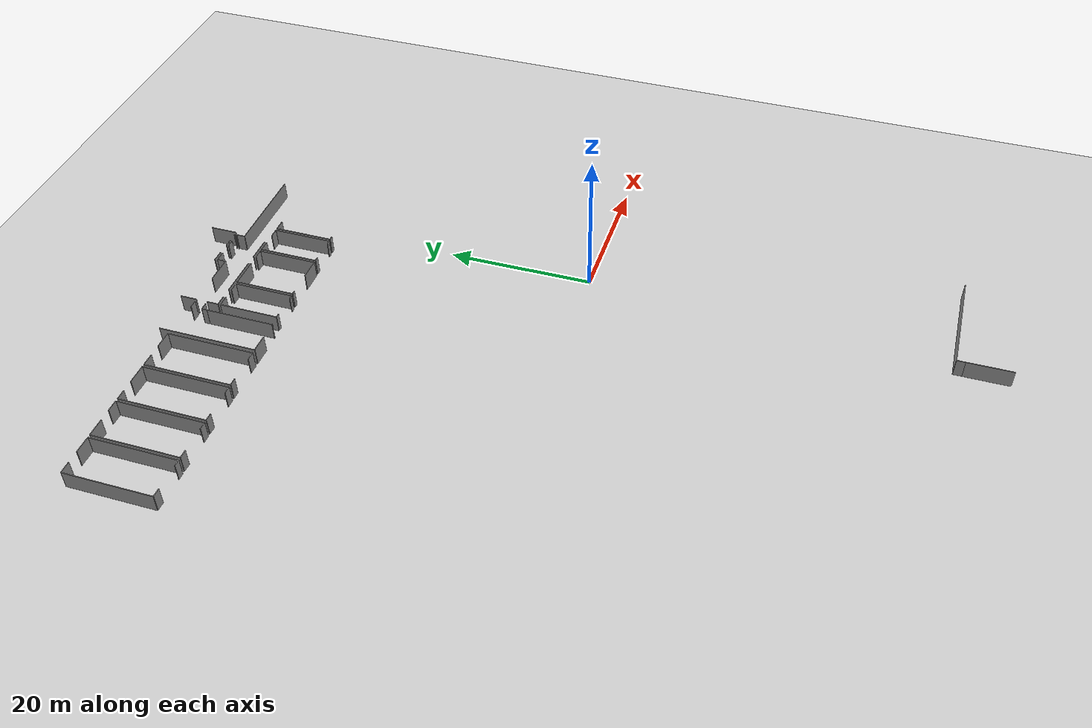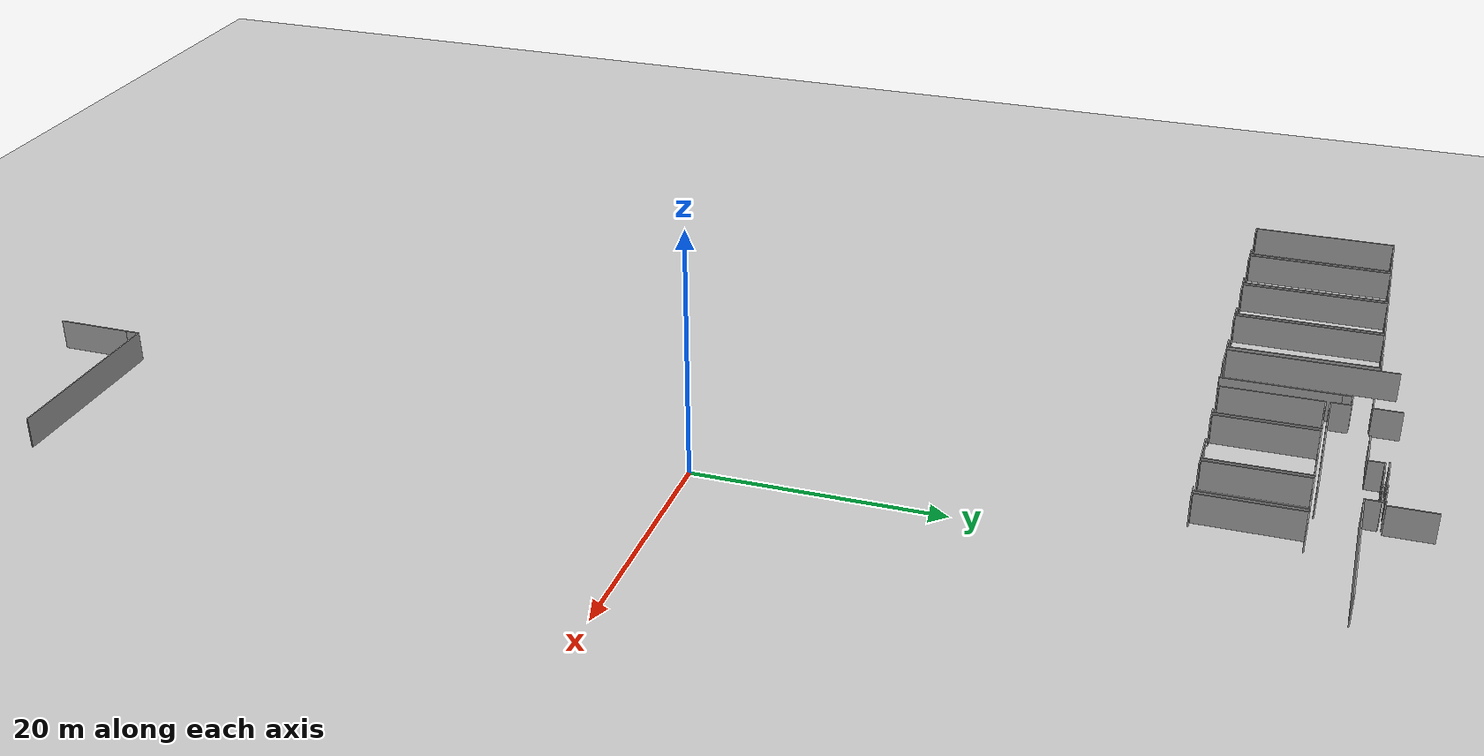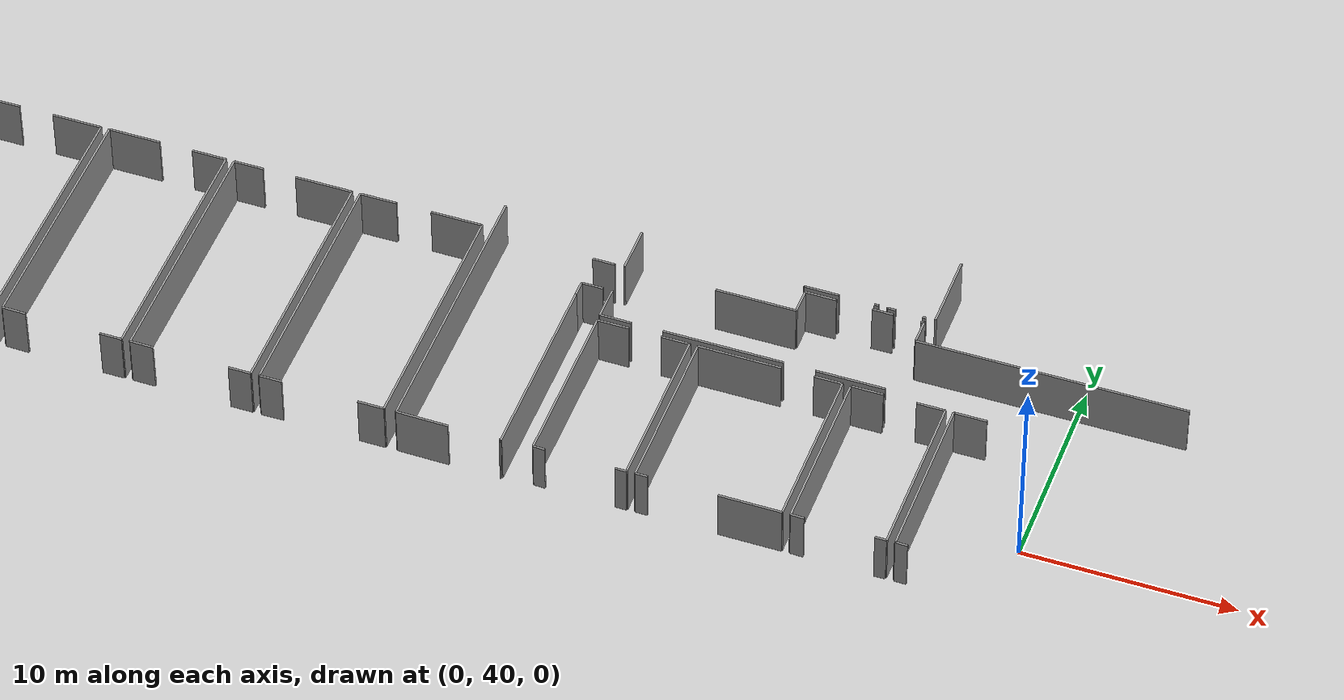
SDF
<sdf version="1.6">
 <world name="default">
  <model name="ground_plane">
   <static>1</static>
   <link name="link">
    <collision name="collision">
     <geometry><plane><normal>0 0 1</normal><size>100 100</size></plane></geometry>
     <surface><friction><ode><mu>100</mu><mu2>50</mu2></ode></friction></surface>
    </collision>
    <visual name="visual">
     <cast_shadows>0</cast_shadows>
     <geometry><plane><normal>0 0 1</normal><size>100 100</size></plane></geometry>
     <material>
      <script><uri>file://media/materials/scripts/gazebo.material</uri><name>Gazebo/Grey</name></script>
     </material>
    </visual>
   </link>
  </model>
  <model name="0510035517_A_40_1_105">
   <static>1</static>
   <link name="Wall_65">
    <collision name="Wall_65_Collision">
     <geometry><box><size>12.1143960911 0.1 2.5</size></box></geometry>
     <pose>6.05719804553 0 1.25 0 0 0</pose>
    </collision>
    <visual name="Wall_65_Visual">
     <pose>6.05719804553 0 1.25 0 0 0</pose>
     <geometry><box><size>12.1143960911 0.1 2.5</size></box></geometry>
     <material>
      <script><uri>file://media/materials/scripts/gazebo.material</uri><name>Gazebo/Grey</name></script>
      <ambient>1 1 1 1</ambient>
     </material>
    </visual>
    <pose>41.6037310256 -27.2690188902 0 0 0 1.57079632679</pose>
   </link>
   <link name="Wall_66">
    <collision name="Wall_66_Collision">
     <geometry><box><size>1.62508021832 0.1 2.5</size></box></geometry>
     <pose>0.81254010916 0 1.25 0 0 0</pose>
    </collision>
    <visual name="Wall_66_Visual">
     <pose>0.81254010916 0 1.25 0 0 0</pose>
     <geometry><box><size>1.62508021832 0.1 2.5</size></box></geometry>
     <material>
      <script><uri>file://media/materials/scripts/gazebo.material</uri><name>Gazebo/Grey</name></script>
      <ambient>1 1 1 1</ambient>
     </material>
    </visual>
    <pose>41.6037310256 -15.1546227992 0 0 0 0.0</pose>
   </link>
   <link name="Wall_67">
    <collision name="Wall_67_Collision">
     <geometry><box><size>2.40635900955 0.1 2.5</size></box></geometry>
     <pose>1.20317950477 0 1.25 0 0 0</pose>
    </collision>
    <visual name="Wall_67_Visual">
     <pose>1.20317950477 0 1.25 0 0 0</pose>
     <geometry><box><size>2.40635900955 0.1 2.5</size></box></geometry>
     <material>
      <script><uri>file://media/materials/scripts/gazebo.material</uri><name>Gazebo/Grey</name></script>
      <ambient>1 1 1 1</ambient>
     </material>
    </visual>
    <pose>44.9108226429 -15.1546227992 0 0 0 0.0</pose>
   </link>
   <link name="Wall_68">
    <collision name="Wall_68_Collision">
     <geometry><box><size>12.1316787709 0.1 2.5</size></box></geometry>
     <pose>6.06583938545 0 1.25 0 0 0</pose>
    </collision>
    <visual name="Wall_68_Visual">
     <pose>6.06583938545 0 1.25 0 0 0</pose>
     <geometry><box><size>12.1316787709 0.1 2.5</size></box></geometry>
     <material>
      <script><uri>file://media/materials/scripts/gazebo.material</uri><name>Gazebo/Grey</name></script>
      <ambient>1 1 1 1</ambient>
     </material>
    </visual>
    <pose>47.3171816524 -15.1546227992 0 0 0 -1.57079632679</pose>
   </link>
   <link name="Wall_69">
    <collision name="Wall_69_Collision">
     <geometry><box><size>0.900986764771 0.1 2.5</size></box></geometry>
     <pose>0.450493382386 0 1.25 0 0 0</pose>
    </collision>
    <visual name="Wall_69_Visual">
     <pose>0.450493382386 0 1.25 0 0 0</pose>
     <geometry><box><size>0.900986764771 0.1 2.5</size></box></geometry>
     <material>
      <script><uri>file://media/materials/scripts/gazebo.material</uri><name>Gazebo/Grey</name></script>
      <ambient>1 1 1 1</ambient>
     </material>
    </visual>
    <pose>47.3171816524 -27.2863015701 0 0 0 3.14159265359</pose>
   </link>
   <link name="Wall_70">
    <collision name="Wall_70_Collision">
     <geometry><box><size>1.17636581864 0.1 2.5</size></box></geometry>
     <pose>0.588182909322 0 1.25 0 0 0</pose>
    </collision>
    <visual name="Wall_70_Visual">
     <pose>0.588182909322 0 1.25 0 0 0</pose>
     <geometry><box><size>1.17636581864 0.1 2.5</size></box></geometry>
     <material>
      <script><uri>file://media/materials/scripts/gazebo.material</uri><name>Gazebo/Grey</name></script>
      <ambient>1 1 1 1</ambient>
     </material>
    </visual>
    <pose>42.7799698824 -27.2863015701 0 0 0 3.12690053882</pose>
   </link>
   <link name="Wall_71">
    <collision name="Wall_71_Collision">
     <geometry><box><size>12.1301538286 0.1 2.5</size></box></geometry>
     <pose>6.06507691428 0 1.25 0 0 0</pose>
    </collision>
    <visual name="Wall_71_Visual">
     <pose>6.06507691428 0 1.25 0 0 0</pose>
     <geometry><box><size>12.1301538286 0.1 2.5</size></box></geometry>
     <material>
      <script><uri>file://media/materials/scripts/gazebo.material</uri><name>Gazebo/Grey</name></script>
      <ambient>1 1 1 1</ambient>
     </material>
    </visual>
    <pose>47.7365407954 -27.2758811307 0 0 0 1.57079632679</pose>
   </link>
   <link name="Wall_72">
    <collision name="Wall_72_Collision">
     <geometry><box><size>2.52860855366 0.1 2.5</size></box></geometry>
     <pose>1.26430427683 0 1.25 0 0 0</pose>
    </collision>
    <visual name="Wall_72_Visual">
     <pose>1.26430427683 0 1.25 0 0 0</pose>
     <geometry><box><size>2.52860855366 0.1 2.5</size></box></geometry>
     <material>
      <script><uri>file://media/materials/scripts/gazebo.material</uri><name>Gazebo/Grey</name></script>
      <ambient>1 1 1 1</ambient>
     </material>
    </visual>
    <pose>47.7365407954 -15.1457273022 0 0 0 0.0</pose>
   </link>
   <link name="Wall_73">
    <collision name="Wall_73_Collision">
     <geometry><box><size>1.66879523201 0.1 2.5</size></box></geometry>
     <pose>0.834397616007 0 1.25 0 0 0</pose>
    </collision>
    <visual name="Wall_73_Visual">
     <pose>0.834397616007 0 1.25 0 0 0</pose>
     <geometry><box><size>1.66879523201 0.1 2.5</size></box></geometry>
     <material>
      <script><uri>file://media/materials/scripts/gazebo.material</uri><name>Gazebo/Grey</name></script>
      <ambient>1 1 1 1</ambient>
     </material>
    </visual>
    <pose>51.8836214839 -15.1457273022 0 0 0 0.0</pose>
   </link>
   <link name="Wall_74">
    <collision name="Wall_74_Collision">
     <geometry><box><size>12.1520113354 0.1 2.5</size></box></geometry>
     <pose>6.0760056677 0 1.25 0 0 0</pose>
    </collision>
    <visual name="Wall_74_Visual">
     <pose>6.0760056677 0 1.25 0 0 0</pose>
     <geometry><box><size>12.1520113354 0.1 2.5</size></box></geometry>
     <material>
      <script><uri>file://media/materials/scripts/gazebo.material</uri><name>Gazebo/Grey</name></script>
      <ambient>1 1 1 1</ambient>
     </material>
    </visual>
    <pose>53.5524167159 -15.1457273022 0 0 0 -1.57079632679</pose>
   </link>
   <link name="Wall_75">
    <collision name="Wall_75_Collision">
     <geometry><box><size>1.06186818144 0.1 2.5</size></box></geometry>
     <pose>0.530934090721 0 1.25 0 0 0</pose>
    </collision>
    <visual name="Wall_75_Visual">
     <pose>0.530934090721 0 1.25 0 0 0</pose>
     <geometry><box><size>1.06186818144 0.1 2.5</size></box></geometry>
     <material>
      <script><uri>file://media/materials/scripts/gazebo.material</uri><name>Gazebo/Grey</name></script>
      <ambient>1 1 1 1</ambient>
     </material>
    </visual>
    <pose>53.5524167159 -27.2977386376 0 0 0 3.14159265359</pose>
   </link>
   <link name="Wall_76">
    <collision name="Wall_76_Collision">
     <geometry><box><size>1.14213682106 0.1 2.5</size></box></geometry>
     <pose>0.571068410529 0 1.25 0 0 0</pose>
    </collision>
    <visual name="Wall_76_Visual">
     <pose>0.571068410529 0 1.25 0 0 0</pose>
     <geometry><box><size>1.14213682106 0.1 2.5</size></box></geometry>
     <material>
      <script><uri>file://media/materials/scripts/gazebo.material</uri><name>Gazebo/Grey</name></script>
      <ambient>1 1 1 1</ambient>
     </material>
    </visual>
    <pose>48.8784684496 -27.2977386376 0 0 0 3.12245410482</pose>
   </link>
   <link name="Wall_77">
    <collision name="Wall_77_Collision">
     <geometry><box><size>12.1344744985 0.1 2.5</size></box></geometry>
     <pose>6.06723724926 0 1.25 0 0 0</pose>
    </collision>
    <visual name="Wall_77_Visual">
     <pose>6.06723724926 0 1.25 0 0 0</pose>
     <geometry><box><size>12.1344744985 0.1 2.5</size></box></geometry>
     <material>
      <script><uri>file://media/materials/scripts/gazebo.material</uri><name>Gazebo/Grey</name></script>
      <ambient>1 1 1 1</ambient>
     </material>
    </visual>
    <pose>53.9623720478 -27.2822350572 0 0 0 1.57079632679</pose>
   </link>
   <link name="Wall_78">
    <collision name="Wall_78_Collision">
     <geometry><box><size>1.43344579783 0.1 2.5</size></box></geometry>
     <pose>0.716722898915 0 1.25 0 0 0</pose>
    </collision>
    <visual name="Wall_78_Visual">
     <pose>0.716722898915 0 1.25 0 0 0</pose>
     <geometry><box><size>1.43344579783 0.1 2.5</size></box></geometry>
     <material>
      <script><uri>file://media/materials/scripts/gazebo.material</uri><name>Gazebo/Grey</name></script>
      <ambient>1 1 1 1</ambient>
     </material>
    </visual>
    <pose>53.9623720478 -15.1477605586 0 0 0 0.0</pose>
   </link>
   <link name="Wall_79">
    <collision name="Wall_79_Collision">
     <geometry><box><size>2.78327392412 0.1 2.5</size></box></geometry>
     <pose>1.39163696206 0 1.25 0 0 0</pose>
    </collision>
    <visual name="Wall_79_Visual">
     <pose>1.39163696206 0 1.25 0 0 0</pose>
     <geometry><box><size>2.78327392412 0.1 2.5</size></box></geometry>
     <material>
      <script><uri>file://media/materials/scripts/gazebo.material</uri><name>Gazebo/Grey</name></script>
      <ambient>1 1 1 1</ambient>
     </material>
    </visual>
    <pose>57.0038695412 -15.1477605586 0 0 0 0.0</pose>
   </link>
   <link name="Wall_80">
    <collision name="Wall_80_Collision">
     <geometry><box><size>12.1438783096 0.1 2.5</size></box></geometry>
     <pose>6.0719391548 0 1.25 0 0 0</pose>
    </collision>
    <visual name="Wall_80_Visual">
     <pose>6.0719391548 0 1.25 0 0 0</pose>
     <geometry><box><size>12.1438783096 0.1 2.5</size></box></geometry>
     <material>
      <script><uri>file://media/materials/scripts/gazebo.material</uri><name>Gazebo/Grey</name></script>
      <ambient>1 1 1 1</ambient>
     </material>
    </visual>
    <pose>59.7871434653 -15.1477605586 0 0 0 -1.57079632679</pose>
   </link>
   <link name="Wall_81">
    <collision name="Wall_81_Collision">
     <geometry><box><size>1.0743218772 0.1 2.5</size></box></geometry>
     <pose>0.537160938602 0 1.25 0 0 0</pose>
    </collision>
    <visual name="Wall_81_Visual">
     <pose>0.537160938602 0 1.25 0 0 0</pose>
     <geometry><box><size>1.0743218772 0.1 2.5</size></box></geometry>
     <material>
      <script><uri>file://media/materials/scripts/gazebo.material</uri><name>Gazebo/Grey</name></script>
      <ambient>1 1 1 1</ambient>
     </material>
    </visual>
    <pose>59.7871434653 -27.2916388682 0 0 0 3.14159265359</pose>
   </link>
   <link name="Wall_82">
    <collision name="Wall_82_Collision">
     <geometry><box><size>1.10460659621 0.1 2.5</size></box></geometry>
     <pose>0.552303298107 0 1.25 0 0 0</pose>
    </collision>
    <visual name="Wall_82_Visual">
     <pose>0.552303298107 0 1.25 0 0 0</pose>
     <geometry><box><size>1.10460659621 0.1 2.5</size></box></geometry>
     <material>
      <script><uri>file://media/materials/scripts/gazebo.material</uri><name>Gazebo/Grey</name></script>
      <ambient>1 1 1 1</ambient>
     </material>
    </visual>
    <pose>55.0669386147 -27.2916388682 0 0 0 3.13307928357</pose>
   </link>
   <link name="Wall_83">
    <collision name="Wall_83_Collision">
     <geometry><box><size>12.149978079 0.1 2.5</size></box></geometry>
     <pose>6.07498903948 0 1.25 0 0 0</pose>
    </collision>
    <visual name="Wall_83_Visual">
     <pose>6.07498903948 0 1.25 0 0 0</pose>
     <geometry><box><size>12.149978079 0.1 2.5</size></box></geometry>
     <material>
      <script><uri>file://media/materials/scripts/gazebo.material</uri><name>Gazebo/Grey</name></script>
      <ambient>1 1 1 1</ambient>
     </material>
    </visual>
    <pose>60.1920156561 -27.2977386376 0 0 0 1.57079632679</pose>
   </link>
   <link name="Wall_84">
    <collision name="Wall_84_Collision">
     <geometry><box><size>1.78774073439 0.1 2.5</size></box></geometry>
     <pose>0.893870367193 0 1.25 0 0 0</pose>
    </collision>
    <visual name="Wall_84_Visual">
     <pose>0.893870367193 0 1.25 0 0 0</pose>
     <geometry><box><size>1.78774073439 0.1 2.5</size></box></geometry>
     <material>
      <script><uri>file://media/materials/scripts/gazebo.material</uri><name>Gazebo/Grey</name></script>
      <ambient>1 1 1 1</ambient>
     </material>
    </visual>
    <pose>60.1920156561 -15.1477605586 0 0 0 0.0</pose>
   </link>
   <link name="Wall_85">
    <collision name="Wall_85_Collision">
     <geometry><box><size>2.48413106879 0.1 2.5</size></box></geometry>
     <pose>1.2420655344 0 1.25 0 0 0</pose>
    </collision>
    <visual name="Wall_85_Visual">
     <pose>1.2420655344 0 1.25 0 0 0</pose>
     <geometry><box><size>2.48413106879 0.1 2.5</size></box></geometry>
     <material>
      <script><uri>file://media/materials/scripts/gazebo.material</uri><name>Gazebo/Grey</name></script>
      <ambient>1 1 1 1</ambient>
     </material>
    </visual>
    <pose>63.6676134017 -15.1477605586 0 0 0 0.0</pose>
   </link>
   <link name="Wall_86">
    <collision name="Wall_86_Collision">
     <geometry><box><size>12.1354911267 0.1 2.5</size></box></geometry>
     <pose>6.06774556337 0 1.25 0 0 0</pose>
    </collision>
    <visual name="Wall_86_Visual">
     <pose>6.06774556337 0 1.25 0 0 0</pose>
     <geometry><box><size>12.1354911267 0.1 2.5</size></box></geometry>
     <material>
      <script><uri>file://media/materials/scripts/gazebo.material</uri><name>Gazebo/Grey</name></script>
      <ambient>1 1 1 1</ambient>
     </material>
    </visual>
    <pose>66.1517444705 -15.1477605586 0 0 0 -1.57079632679</pose>
   </link>
   <link name="Wall_87">
    <collision name="Wall_87_Collision">
     <geometry><box><size>1.24918193197 0.1 2.5</size></box></geometry>
     <pose>0.624590965987 0 1.25 0 0 0</pose>
    </collision>
    <visual name="Wall_87_Visual">
     <pose>0.624590965987 0 1.25 0 0 0</pose>
     <geometry><box><size>1.24918193197 0.1 2.5</size></box></geometry>
     <material>
      <script><uri>file://media/materials/scripts/gazebo.material</uri><name>Gazebo/Grey</name></script>
      <ambient>1 1 1 1</ambient>
     </material>
    </visual>
    <pose>66.1517444705 -27.2832516854 0 0 0 3.14159265359</pose>
   </link>
   <link name="Wall_88">
    <collision name="Wall_88_Collision">
     <geometry><box><size>1.07162407636 0.1 2.5</size></box></geometry>
     <pose>0.535812038178 0 1.25 0 0 0</pose>
    </collision>
    <visual name="Wall_88_Visual">
     <pose>0.535812038178 0 1.25 0 0 0</pose>
     <geometry><box><size>1.07162407636 0.1 2.5</size></box></geometry>
     <material>
      <script><uri>file://media/materials/scripts/gazebo.material</uri><name>Gazebo/Grey</name></script>
      <ambient>1 1 1 1</ambient>
     </material>
    </visual>
    <pose>61.2635418057 -27.2832516854 0 0 0 -3.12807355316</pose>
   </link>
   <link name="Wall_89">
    <collision name="Wall_89_Collision">
     <geometry><box><size>13.6660249201 0.1 2.5</size></box></geometry>
     <pose>6.83301246005 0 1.25 0 0 0</pose>
    </collision>
    <visual name="Wall_89_Visual">
     <pose>6.83301246005 0 1.25 0 0 0</pose>
     <geometry><box><size>13.6660249201 0.1 2.5</size></box></geometry>
     <material>
      <script><uri>file://media/materials/scripts/gazebo.material</uri><name>Gazebo/Grey</name></script>
      <ambient>1 1 1 1</ambient>
     </material>
    </visual>
    <pose>66.7218187479 -27.2753728166 0 0 0 1.57079632679</pose>
   </link>
   <link name="Wall_93">
    <collision name="Wall_93_Collision">
     <geometry><box><size>1.06923873608 0.1 2.5</size></box></geometry>
     <pose>0.534619368038 0 1.25 0 0 0</pose>
    </collision>
    <visual name="Wall_93_Visual">
     <pose>0.534619368038 0 1.25 0 0 0</pose>
     <geometry><box><size>1.06923873608 0.1 2.5</size></box></geometry>
     <material>
      <script><uri>file://media/materials/scripts/gazebo.material</uri><name>Gazebo/Grey</name></script>
      <ambient>1 1 1 1</ambient>
     </material>
    </visual>
    <pose>71.6359454325 -15.456307225 0 0 0 0.0</pose>
   </link>
   <link name="Wall_94">
    <collision name="Wall_94_Collision">
     <geometry><box><size>1.01713653952 0.1 2.5</size></box></geometry>
     <pose>0.508568269762 0 1.25 0 0 0</pose>
    </collision>
    <visual name="Wall_94_Visual">
     <pose>0.508568269762 0 1.25 0 0 0</pose>
     <geometry><box><size>1.01713653952 0.1 2.5</size></box></geometry>
     <material>
      <script><uri>file://media/materials/scripts/gazebo.material</uri><name>Gazebo/Grey</name></script>
      <ambient>1 1 1 1</ambient>
     </material>
    </visual>
    <pose>72.7051841686 -17.0478387119 0 0 0 3.14159265359</pose>
   </link>
   <link name="Wall_95">
    <collision name="Wall_95_Collision">
     <geometry><box><size>0.759421284383 0.1 2.5</size></box></geometry>
     <pose>0.379710642191 0 1.25 0 0 0</pose>
    </collision>
    <visual name="Wall_95_Visual">
     <pose>0.379710642191 0 1.25 0 0 0</pose>
     <geometry><box><size>0.759421284383 0.1 2.5</size></box></geometry>
     <material>
      <script><uri>file://media/materials/scripts/gazebo.material</uri><name>Gazebo/Grey</name></script>
      <ambient>1 1 1 1</ambient>
     </material>
    </visual>
    <pose>71.688047629 -17.0478387119 0 0 0 -1.57079632679</pose>
   </link>
   <link name="Wall_96">
    <collision name="Wall_96_Collision">
     <geometry><box><size>9.49429099712 0.1 2.5</size></box></geometry>
     <pose>4.74714549856 0 1.25 0 0 0</pose>
    </collision>
    <visual name="Wall_96_Visual">
     <pose>4.74714549856 0 1.25 0 0 0</pose>
     <geometry><box><size>9.49429099712 0.1 2.5</size></box></geometry>
     <material>
      <script><uri>file://media/materials/scripts/gazebo.material</uri><name>Gazebo/Grey</name></script>
      <ambient>1 1 1 1</ambient>
     </material>
    </visual>
    <pose>71.688047629 -17.8072599963 0 0 0 -1.57079632679</pose>
   </link>
   <link name="Wall_97">
    <collision name="Wall_97_Collision">
     <geometry><box><size>0.0706556616661 0.1 2.5</size></box></geometry>
     <pose>0.0353278308331 0 1.25 0 0 0</pose>
    </collision>
    <visual name="Wall_97_Visual">
     <pose>0.0353278308331 0 1.25 0 0 0</pose>
     <geometry><box><size>0.0706556616661 0.1 2.5</size></box></geometry>
     <material>
      <script><uri>file://media/materials/scripts/gazebo.material</uri><name>Gazebo/Grey</name></script>
      <ambient>1 1 1 1</ambient>
     </material>
    </visual>
    <pose>71.688047629 -27.3015509934 0 0 0 3.14159265359</pose>
   </link>
   <link name="Wall_98">
    <collision name="Wall_98_Collision">
     <geometry><box><size>2.47435742725 0.1 2.5</size></box></geometry>
     <pose>1.23717871363 0 1.25 0 0 0</pose>
    </collision>
    <visual name="Wall_98_Visual">
     <pose>1.23717871363 0 1.25 0 0 0</pose>
     <geometry><box><size>2.47435742725 0.1 2.5</size></box></geometry>
     <material>
      <script><uri>file://media/materials/scripts/gazebo.material</uri><name>Gazebo/Grey</name></script>
      <ambient>1 1 1 1</ambient>
     </material>
    </visual>
    <pose>69.1960376915 -27.3015509934 0 0 0 3.1310126683</pose>
   </link>
   <link name="Wall_172">
    <collision name="Wall_172_Collision">
     <geometry><box><size>0.208154629153 0.1 2.5</size></box></geometry>
     <pose>0.104077314577 0 1.25 0 0 0</pose>
    </collision>
    <visual name="Wall_172_Visual">
     <pose>0.104077314577 0 1.25 0 0 0</pose>
     <geometry><box><size>0.208154629153 0.1 2.5</size></box></geometry>
     <material>
      <script><uri>file://media/materials/scripts/gazebo.material</uri><name>Gazebo/Grey</name></script>
      <ambient>1 1 1 1</ambient>
     </material>
    </visual>
    <pose>84.7415540433 -13.8663006805 0 0 0 3.14159265359</pose>
   </link>
   <link name="Wall_173">
    <collision name="Wall_173_Collision">
     <geometry><box><size>1.65227502335 0.1 2.5</size></box></geometry>
     <pose>0.826137511675 0 1.25 0 0 0</pose>
    </collision>
    <visual name="Wall_173_Visual">
     <pose>0.826137511675 0 1.25 0 0 0</pose>
     <geometry><box><size>1.65227502335 0.1 2.5</size></box></geometry>
     <material>
      <script><uri>file://media/materials/scripts/gazebo.material</uri><name>Gazebo/Grey</name></script>
      <ambient>1 1 1 1</ambient>
     </material>
    </visual>
    <pose>82.8747704644 -13.8663006805 0 0 0 3.14159265359</pose>
   </link>
   <link name="Wall_174">
    <collision name="Wall_174_Collision">
     <geometry><box><size>0.0368527731712 0.1 2.5</size></box></geometry>
     <pose>0.0184263865856 0 1.25 0 0 0</pose>
    </collision>
    <visual name="Wall_174_Visual">
     <pose>0.0184263865856 0 1.25 0 0 0</pose>
     <geometry><box><size>0.0368527731712 0.1 2.5</size></box></geometry>
     <material>
      <script><uri>file://media/materials/scripts/gazebo.material</uri><name>Gazebo/Grey</name></script>
      <ambient>1 1 1 1</ambient>
     </material>
    </visual>
    <pose>81.2224954411 -13.8663006805 0 0 0 1.57079632679</pose>
   </link>
   <link name="Wall_178">
    <collision name="Wall_178_Collision">
     <geometry><box><size>0.161389730784 0.1 2.5</size></box></geometry>
     <pose>0.0806948653921 0 1.25 0 0 0</pose>
    </collision>
    <visual name="Wall_178_Visual">
     <pose>0.0806948653921 0 1.25 0 0 0</pose>
     <geometry><box><size>0.161389730784 0.1 2.5</size></box></geometry>
     <material>
      <script><uri>file://media/materials/scripts/gazebo.material</uri><name>Gazebo/Grey</name></script>
      <ambient>1 1 1 1</ambient>
     </material>
    </visual>
    <pose>86.9895732068 -13.886379088 0 0 0 3.14159265359</pose>
   </link>
   <link name="Wall_179">
    <collision name="Wall_179_Collision">
     <geometry><box><size>0.381998055699 0.1 2.5</size></box></geometry>
     <pose>0.190999027849 0 1.25 0 0 0</pose>
    </collision>
    <visual name="Wall_179_Visual">
     <pose>0.190999027849 0 1.25 0 0 0</pose>
     <geometry><box><size>0.381998055699 0.1 2.5</size></box></geometry>
     <material>
      <script><uri>file://media/materials/scripts/gazebo.material</uri><name>Gazebo/Grey</name></script>
      <ambient>1 1 1 1</ambient>
     </material>
    </visual>
    <pose>85.551806739 -13.886379088 0 0 0 3.14159265359</pose>
   </link>
   <link name="Wall_180">
    <collision name="Wall_180_Collision">
     <geometry><box><size>0.0521028164439 0.1 2.5</size></box></geometry>
     <pose>0.026051408222 0 1.25 0 0 0</pose>
    </collision>
    <visual name="Wall_180_Visual">
     <pose>0.026051408222 0 1.25 0 0 0</pose>
     <geometry><box><size>0.0521028164439 0.1 2.5</size></box></geometry>
     <material>
      <script><uri>file://media/materials/scripts/gazebo.material</uri><name>Gazebo/Grey</name></script>
      <ambient>1 1 1 1</ambient>
     </material>
    </visual>
    <pose>85.1698086833 -13.886379088 0 0 0 1.56591831671</pose>
   </link>
   <link name="Wall_186">
    <collision name="Wall_186_Collision">
     <geometry><box><size>3.70738898102 0.1 2.5</size></box></geometry>
     <pose>1.85369449051 0 1.25 0 0 0</pose>
    </collision>
    <visual name="Wall_186_Visual">
     <pose>1.85369449051 0 1.25 0 0 0</pose>
     <geometry><box><size>3.70738898102 0.1 2.5</size></box></geometry>
     <material>
      <script><uri>file://media/materials/scripts/gazebo.material</uri><name>Gazebo/Grey</name></script>
      <ambient>1 1 1 1</ambient>
     </material>
    </visual>
    <pose>87.4213860455 -13.8419016031 0 0 0 1.57079632679</pose>
   </link>
   <link name="Wall_258">
    <collision name="Wall_258_Collision">
     <geometry><box><size>8.16937026235 0.1 2.5</size></box></geometry>
     <pose>4.08468513118 0 1.25 0 0 0</pose>
    </collision>
    <visual name="Wall_258_Visual">
     <pose>4.08468513118 0 1.25 0 0 0</pose>
     <geometry><box><size>8.16937026235 0.1 2.5</size></box></geometry>
     <material>
      <script><uri>file://media/materials/scripts/gazebo.material</uri><name>Gazebo/Grey</name></script>
      <ambient>1 1 1 1</ambient>
     </material>
    </visual>
    <pose>89.9507570703 -27.1676102247 0 0 0 1.57079632679</pose>
   </link>
   <link name="Wall_259">
    <collision name="Wall_259_Collision">
     <geometry><box><size>1.55213714315 0.1 2.5</size></box></geometry>
     <pose>0.776068571574 0 1.25 0 0 0</pose>
    </collision>
    <visual name="Wall_259_Visual">
     <pose>0.776068571574 0 1.25 0 0 0</pose>
     <geometry><box><size>1.55213714315 0.1 2.5</size></box></geometry>
     <material>
      <script><uri>file://media/materials/scripts/gazebo.material</uri><name>Gazebo/Grey</name></script>
      <ambient>1 1 1 1</ambient>
     </material>
    </visual>
    <pose>89.9507570703 -18.9982399624 0 0 0 0.0</pose>
   </link>
   <link name="Wall_263">
    <collision name="Wall_263_Collision">
     <geometry><box><size>0.570004246767 0.1 2.5</size></box></geometry>
     <pose>0.285002123384 0 1.25 0 0 0</pose>
    </collision>
    <visual name="Wall_263_Visual">
     <pose>0.285002123384 0 1.25 0 0 0</pose>
     <geometry><box><size>0.570004246767 0.1 2.5</size></box></geometry>
     <material>
      <script><uri>file://media/materials/scripts/gazebo.material</uri><name>Gazebo/Grey</name></script>
      <ambient>1 1 1 1</ambient>
     </material>
    </visual>
    <pose>90.5205771907 -27.182097177 0 0 0 3.11617440033</pose>
   </link>
   <link name="Wall_264">
    <collision name="Wall_264_Collision">
     <geometry><box><size>8.16225386478 0.1 2.5</size></box></geometry>
     <pose>4.08112693239 0 1.25 0 0 0</pose>
    </collision>
    <visual name="Wall_264_Visual">
     <pose>4.08112693239 0 1.25 0 0 0</pose>
     <geometry><box><size>8.16225386478 0.1 2.5</size></box></geometry>
     <material>
      <script><uri>file://media/materials/scripts/gazebo.material</uri><name>Gazebo/Grey</name></script>
      <ambient>1 1 1 1</ambient>
     </material>
    </visual>
    <pose>85.146172077 -27.1676102247 0 0 0 1.57079632679</pose>
   </link>
   <link name="Wall_265">
    <collision name="Wall_265_Collision">
     <geometry><box><size>1.53587109154 0.1 2.5</size></box></geometry>
     <pose>0.767935545771 0 1.25 0 0 0</pose>
    </collision>
    <visual name="Wall_265_Visual">
     <pose>0.767935545771 0 1.25 0 0 0</pose>
     <geometry><box><size>1.53587109154 0.1 2.5</size></box></geometry>
     <material>
      <script><uri>file://media/materials/scripts/gazebo.material</uri><name>Gazebo/Grey</name></script>
      <ambient>1 1 1 1</ambient>
     </material>
    </visual>
    <pose>85.146172077 -19.00535636 0 0 0 0.0</pose>
   </link>
   <link name="Wall_266">
    <collision name="Wall_266_Collision">
     <geometry><box><size>1.33762858759 0.1 2.5</size></box></geometry>
     <pose>0.668814293793 0 1.25 0 0 0</pose>
    </collision>
    <visual name="Wall_266_Visual">
     <pose>0.668814293793 0 1.25 0 0 0</pose>
     <geometry><box><size>1.33762858759 0.1 2.5</size></box></geometry>
     <material>
      <script><uri>file://media/materials/scripts/gazebo.material</uri><name>Gazebo/Grey</name></script>
      <ambient>1 1 1 1</ambient>
     </material>
    </visual>
    <pose>88.2255389718 -19.00535636 0 0 0 0.0</pose>
   </link>
   <link name="Wall_267">
    <collision name="Wall_267_Collision">
     <geometry><box><size>8.18385721457 0.1 2.5</size></box></geometry>
     <pose>4.09192860728 0 1.25 0 0 0</pose>
    </collision>
    <visual name="Wall_267_Visual">
     <pose>4.09192860728 0 1.25 0 0 0</pose>
     <geometry><box><size>8.18385721457 0.1 2.5</size></box></geometry>
     <material>
      <script><uri>file://media/materials/scripts/gazebo.material</uri><name>Gazebo/Grey</name></script>
      <ambient>1 1 1 1</ambient>
     </material>
    </visual>
    <pose>89.5631675594 -19.00535636 0 0 0 -1.57079632679</pose>
   </link>
   <link name="Wall_268">
    <collision name="Wall_268_Collision">
     <geometry><box><size>0.544404414708 0.1 2.5</size></box></geometry>
     <pose>0.272202207354 0 1.25 0 0 0</pose>
    </collision>
    <visual name="Wall_268_Visual">
     <pose>0.272202207354 0 1.25 0 0 0</pose>
     <geometry><box><size>0.544404414708 0.1 2.5</size></box></geometry>
     <material>
      <script><uri>file://media/materials/scripts/gazebo.material</uri><name>Gazebo/Grey</name></script>
      <ambient>1 1 1 1</ambient>
     </material>
    </visual>
    <pose>89.5631675594 -27.1892135745 0 0 0 3.14159265359</pose>
   </link>
   <link name="Wall_269">
    <collision name="Wall_269_Collision">
     <geometry><box><size>0.6289015574 0.1 2.5</size></box></geometry>
     <pose>0.3144507787 0 1.25 0 0 0</pose>
    </collision>
    <visual name="Wall_269_Visual">
     <pose>0.3144507787 0 1.25 0 0 0</pose>
     <geometry><box><size>0.6289015574 0.1 2.5</size></box></geometry>
     <material>
      <script><uri>file://media/materials/scripts/gazebo.material</uri><name>Gazebo/Grey</name></script>
      <ambient>1 1 1 1</ambient>
     </material>
    </visual>
    <pose>85.7747024774 -27.1892135745 0 0 0 3.1072349701</pose>
   </link>
   <link name="Wall_270">
    <collision name="Wall_270_Collision">
     <geometry><box><size>8.17216598997 0.1 2.5</size></box></geometry>
     <pose>4.08608299499 0 1.25 0 0 0</pose>
    </collision>
    <visual name="Wall_270_Visual">
     <pose>4.08608299499 0 1.25 0 0 0</pose>
     <geometry><box><size>8.17216598997 0.1 2.5</size></box></geometry>
     <material>
      <script><uri>file://media/materials/scripts/gazebo.material</uri><name>Gazebo/Grey</name></script>
      <ambient>1 1 1 1</ambient>
     </material>
    </visual>
    <pose>77.9400570583 -27.168626853 0 0 0 1.57079632679</pose>
   </link>
   <link name="Wall_271">
    <collision name="Wall_271_Collision">
     <geometry><box><size>3.94070515875 0.1 2.5</size></box></geometry>
     <pose>1.97035257938 0 1.25 0 0 0</pose>
    </collision>
    <visual name="Wall_271_Visual">
     <pose>1.97035257938 0 1.25 0 0 0</pose>
     <geometry><box><size>3.94070515875 0.1 2.5</size></box></geometry>
     <material>
      <script><uri>file://media/materials/scripts/gazebo.material</uri><name>Gazebo/Grey</name></script>
      <ambient>1 1 1 1</ambient>
     </material>
    </visual>
    <pose>77.9400570583 -18.996460863 0 0 0 0.0</pose>
   </link>
   <link name="Wall_272">
    <collision name="Wall_272_Collision">
     <geometry><box><size>1.33762858759 0.1 2.5</size></box></geometry>
     <pose>0.668814293793 0 1.25 0 0 0</pose>
    </collision>
    <visual name="Wall_272_Visual">
     <pose>0.668814293793 0 1.25 0 0 0</pose>
     <geometry><box><size>1.33762858759 0.1 2.5</size></box></geometry>
     <material>
      <script><uri>file://media/materials/scripts/gazebo.material</uri><name>Gazebo/Grey</name></script>
      <ambient>1 1 1 1</ambient>
     </material>
    </visual>
    <pose>83.4196831932 -18.996460863 0 0 0 0.0</pose>
   </link>
   <link name="Wall_273">
    <collision name="Wall_273_Collision">
     <geometry><box><size>8.18207811517 0.1 2.5</size></box></geometry>
     <pose>4.09103905759 0 1.25 0 0 0</pose>
    </collision>
    <visual name="Wall_273_Visual">
     <pose>4.09103905759 0 1.25 0 0 0</pose>
     <geometry><box><size>8.18207811517 0.1 2.5</size></box></geometry>
     <material>
      <script><uri>file://media/materials/scripts/gazebo.material</uri><name>Gazebo/Grey</name></script>
      <ambient>1 1 1 1</ambient>
     </material>
    </visual>
    <pose>84.7573117808 -18.996460863 0 0 0 -1.57079632679</pose>
   </link>
   <link name="Wall_274">
    <collision name="Wall_274_Collision">
     <geometry><box><size>2.96931688937 0.1 2.5</size></box></geometry>
     <pose>1.48465844469 0 1.25 0 0 0</pose>
    </collision>
    <visual name="Wall_274_Visual">
     <pose>1.48465844469 0 1.25 0 0 0</pose>
     <geometry><box><size>2.96931688937 0.1 2.5</size></box></geometry>
     <material>
      <script><uri>file://media/materials/scripts/gazebo.material</uri><name>Gazebo/Grey</name></script>
      <ambient>1 1 1 1</ambient>
     </material>
    </visual>
    <pose>84.7573117808 -27.1785389782 0 0 0 3.14159265359</pose>
   </link>
   <link name="Wall_275">
    <collision name="Wall_275_Collision">
     <geometry><box><size>0.58108757692 0.1 2.5</size></box></geometry>
     <pose>0.29054378846 0 1.25 0 0 0</pose>
    </collision>
    <visual name="Wall_275_Visual">
     <pose>0.29054378846 0 1.25 0 0 0</pose>
     <geometry><box><size>0.58108757692 0.1 2.5</size></box></geometry>
     <material>
      <script><uri>file://media/materials/scripts/gazebo.material</uri><name>Gazebo/Grey</name></script>
      <ambient>1 1 1 1</ambient>
     </material>
    </visual>
    <pose>78.5210600891 -27.1785389782 0 0 0 3.12453394102</pose>
   </link>
   <link name="Wall_276">
    <collision name="Wall_276_Collision">
     <geometry><box><size>8.1691161053 0.1 2.5</size></box></geometry>
     <pose>4.08455805265 0 1.25 0 0 0</pose>
    </collision>
    <visual name="Wall_276_Visual">
     <pose>4.08455805265 0 1.25 0 0 0</pose>
     <geometry><box><size>8.1691161053 0.1 2.5</size></box></geometry>
     <material>
      <script><uri>file://media/materials/scripts/gazebo.material</uri><name>Gazebo/Grey</name></script>
      <ambient>1 1 1 1</ambient>
     </material>
    </visual>
    <pose>73.1606336135 -27.1655769683 0 0 0 1.57079632679</pose>
   </link>
   <link name="Wall_277">
    <collision name="Wall_277_Collision">
     <geometry><box><size>1.50969291474 0.1 2.5</size></box></geometry>
     <pose>0.754846457368 0 1.25 0 0 0</pose>
    </collision>
    <visual name="Wall_277_Visual">
     <pose>0.754846457368 0 1.25 0 0 0</pose>
     <geometry><box><size>1.50969291474 0.1 2.5</size></box></geometry>
     <material>
      <script><uri>file://media/materials/scripts/gazebo.material</uri><name>Gazebo/Grey</name></script>
      <ambient>1 1 1 1</ambient>
     </material>
    </visual>
    <pose>73.1606336135 -18.996460863 0 0 0 0.0</pose>
   </link>
   <link name="Wall_278">
    <collision name="Wall_278_Collision">
     <geometry><box><size>1.34931981218 0.1 2.5</size></box></geometry>
     <pose>0.674659906089 0 1.25 0 0 0</pose>
    </collision>
    <visual name="Wall_278_Visual">
     <pose>0.674659906089 0 1.25 0 0 0</pose>
     <geometry><box><size>1.34931981218 0.1 2.5</size></box></geometry>
     <material>
      <script><uri>file://media/materials/scripts/gazebo.material</uri><name>Gazebo/Grey</name></script>
      <ambient>1 1 1 1</ambient>
     </material>
    </visual>
    <pose>76.1950147093 -18.996460863 0 0 0 0.0</pose>
   </link>
   <link name="Wall_279">
    <collision name="Wall_279_Collision">
     <geometry><box><size>8.1952942821 0.1 2.5</size></box></geometry>
     <pose>4.09764714105 0 1.25 0 0 0</pose>
    </collision>
    <visual name="Wall_279_Visual">
     <pose>4.09764714105 0 1.25 0 0 0</pose>
     <geometry><box><size>8.1952942821 0.1 2.5</size></box></geometry>
     <material>
      <script><uri>file://media/materials/scripts/gazebo.material</uri><name>Gazebo/Grey</name></script>
      <ambient>1 1 1 1</ambient>
     </material>
    </visual>
    <pose>77.5443345215 -18.996460863 0 0 0 -1.57079632679</pose>
   </link>
   <link name="Wall_280">
    <collision name="Wall_280_Collision">
     <geometry><box><size>0.539321273581 0.1 2.5</size></box></geometry>
     <pose>0.269660636791 0 1.25 0 0 0</pose>
    </collision>
    <visual name="Wall_280_Visual">
     <pose>0.269660636791 0 1.25 0 0 0</pose>
     <geometry><box><size>0.539321273581 0.1 2.5</size></box></geometry>
     <material>
      <script><uri>file://media/materials/scripts/gazebo.material</uri><name>Gazebo/Grey</name></script>
      <ambient>1 1 1 1</ambient>
     </material>
    </visual>
    <pose>77.5443345215 -27.1917551451 0 0 0 3.14159265359</pose>
   </link>
   <link name="Wall_281">
    <collision name="Wall_281_Collision">
     <geometry><box><size>0.551126259226 0.1 2.5</size></box></geometry>
     <pose>0.275563129613 0 1.25 0 0 0</pose>
    </collision>
    <visual name="Wall_281_Visual">
     <pose>0.275563129613 0 1.25 0 0 0</pose>
     <geometry><box><size>0.551126259226 0.1 2.5</size></box></geometry>
     <material>
      <script><uri>file://media/materials/scripts/gazebo.material</uri><name>Gazebo/Grey</name></script>
      <ambient>1 1 1 1</ambient>
     </material>
    </visual>
    <pose>73.7111377976 -27.1917551451 0 0 0 3.09407535566</pose>
   </link>
   <link name="Wall_288">
    <collision name="Wall_288_Collision">
     <geometry><box><size>3.83345088097 0.1 2.5</size></box></geometry>
     <pose>1.91672544049 0 1.25 0 0 0</pose>
    </collision>
    <visual name="Wall_288_Visual">
     <pose>1.91672544049 0 1.25 0 0 0</pose>
     <geometry><box><size>3.83345088097 0.1 2.5</size></box></geometry>
     <material>
      <script><uri>file://media/materials/scripts/gazebo.material</uri><name>Gazebo/Grey</name></script>
      <ambient>1 1 1 1</ambient>
     </material>
    </visual>
    <pose>77.5242561141 -15.4194544519 0 0 0 0.0</pose>
   </link>
   <link name="Wall_289">
    <collision name="Wall_289_Collision">
     <geometry><box><size>1.23062846686 0.1 2.5</size></box></geometry>
     <pose>0.615314233431 0 1.25 0 0 0</pose>
    </collision>
    <visual name="Wall_289_Visual">
     <pose>0.615314233431 0 1.25 0 0 0</pose>
     <geometry><box><size>1.23062846686 0.1 2.5</size></box></geometry>
     <material>
      <script><uri>file://media/materials/scripts/gazebo.material</uri><name>Gazebo/Grey</name></script>
      <ambient>1 1 1 1</ambient>
     </material>
    </visual>
    <pose>81.357706995 -15.4194544519 0 0 0 1.57079632679</pose>
   </link>
   <link name="Wall_290">
    <collision name="Wall_290_Collision">
     <geometry><box><size>1.4901228214 0.1 2.5</size></box></geometry>
     <pose>0.745061410699 0 1.25 0 0 0</pose>
    </collision>
    <visual name="Wall_290_Visual">
     <pose>0.745061410699 0 1.25 0 0 0</pose>
     <geometry><box><size>1.4901228214 0.1 2.5</size></box></geometry>
     <material>
      <script><uri>file://media/materials/scripts/gazebo.material</uri><name>Gazebo/Grey</name></script>
      <ambient>1 1 1 1</ambient>
     </material>
    </visual>
    <pose>81.357706995 -14.188825985 0 0 0 0.0</pose>
   </link>
   <link name="Wall_291">
    <collision name="Wall_291_Collision">
     <geometry><box><size>0.999599702636 0.1 2.5</size></box></geometry>
     <pose>0.499799851318 0 1.25 0 0 0</pose>
    </collision>
    <visual name="Wall_291_Visual">
     <pose>0.499799851318 0 1.25 0 0 0</pose>
     <geometry><box><size>0.999599702636 0.1 2.5</size></box></geometry>
     <material>
      <script><uri>file://media/materials/scripts/gazebo.material</uri><name>Gazebo/Grey</name></script>
      <ambient>1 1 1 1</ambient>
     </material>
    </visual>
    <pose>84.5425490682 -14.188825985 0 0 0 0.0</pose>
   </link>
   <link name="Wall_292">
    <collision name="Wall_292_Collision">
     <geometry><box><size>0.160881416671 0.1 2.5</size></box></geometry>
     <pose>0.0804407083357 0 1.25 0 0 0</pose>
    </collision>
    <visual name="Wall_292_Visual">
     <pose>0.0804407083357 0 1.25 0 0 0</pose>
     <geometry><box><size>0.160881416671 0.1 2.5</size></box></geometry>
     <material>
      <script><uri>file://media/materials/scripts/gazebo.material</uri><name>Gazebo/Grey</name></script>
      <ambient>1 1 1 1</ambient>
     </material>
    </visual>
    <pose>86.8347915594 -14.188825985 0 0 0 0.0</pose>
   </link>
   <link name="Wall_293">
    <collision name="Wall_293_Collision">
     <geometry><box><size>1.21309162997 0.1 2.5</size></box></geometry>
     <pose>0.606545814986 0 1.25 0 0 0</pose>
    </collision>
    <visual name="Wall_293_Visual">
     <pose>0.606545814986 0 1.25 0 0 0</pose>
     <geometry><box><size>1.21309162997 0.1 2.5</size></box></geometry>
     <material>
      <script><uri>file://media/materials/scripts/gazebo.material</uri><name>Gazebo/Grey</name></script>
      <ambient>1 1 1 1</ambient>
     </material>
    </visual>
    <pose>86.9956729761 -14.188825985 0 0 0 -1.57079632679</pose>
   </link>
   <link name="Wall_294">
    <collision name="Wall_294_Collision">
     <geometry><box><size>12.7447055908 0.1 2.5</size></box></geometry>
     <pose>6.37235279541 0 1.25 0 0 0</pose>
    </collision>
    <visual name="Wall_294_Visual">
     <pose>6.37235279541 0 1.25 0 0 0</pose>
     <geometry><box><size>12.7447055908 0.1 2.5</size></box></geometry>
     <material>
      <script><uri>file://media/materials/scripts/gazebo.material</uri><name>Gazebo/Grey</name></script>
      <ambient>1 1 1 1</ambient>
     </material>
    </visual>
    <pose>86.9956729761 -15.401917615 0 0 0 0.0</pose>
   </link>
   <link name="Wall_315">
    <collision name="Wall_315_Collision">
     <geometry><box><size>3.27888018401 0.1 2.5</size></box></geometry>
     <pose>1.639440092 0 1.25 0 0 0</pose>
    </collision>
    <visual name="Wall_315_Visual">
     <pose>1.639440092 0 1.25 0 0 0</pose>
     <geometry><box><size>3.27888018401 0.1 2.5</size></box></geometry>
     <material>
      <script><uri>file://media/materials/scripts/gazebo.material</uri><name>Gazebo/Grey</name></script>
      <ambient>1 1 1 1</ambient>
     </material>
    </visual>
    <pose>86.652306793 -18.6525863657 0 0 0 3.14159265359</pose>
   </link>
   <link name="Wall_316">
    <collision name="Wall_316_Collision">
     <geometry><box><size>5.72895420725 0.1 2.5</size></box></geometry>
     <pose>2.86447710363 0 1.25 0 0 0</pose>
    </collision>
    <visual name="Wall_316_Visual">
     <pose>2.86447710363 0 1.25 0 0 0</pose>
     <geometry><box><size>5.72895420725 0.1 2.5</size></box></geometry>
     <material>
      <script><uri>file://media/materials/scripts/gazebo.material</uri><name>Gazebo/Grey</name></script>
      <ambient>1 1 1 1</ambient>
     </material>
    </visual>
    <pose>81.8830496305 -18.6525863657 0 0 0 3.14159265359</pose>
   </link>
   <link name="Wall_317">
    <collision name="Wall_317_Collision">
     <geometry><box><size>1.49927247543 0.1 2.5</size></box></geometry>
     <pose>0.749636237713 0 1.25 0 0 0</pose>
    </collision>
    <visual name="Wall_317_Visual">
     <pose>0.749636237713 0 1.25 0 0 0</pose>
     <geometry><box><size>1.49927247543 0.1 2.5</size></box></geometry>
     <material>
      <script><uri>file://media/materials/scripts/gazebo.material</uri><name>Gazebo/Grey</name></script>
      <ambient>1 1 1 1</ambient>
     </material>
    </visual>
    <pose>74.6517730632 -18.6525863657 0 0 0 3.14159265359</pose>
   </link>
   <link name="Wall_318">
    <collision name="Wall_318_Collision">
     <geometry><box><size>1.61770966369 0.1 2.5</size></box></geometry>
     <pose>0.808854831843 0 1.25 0 0 0</pose>
    </collision>
    <visual name="Wall_318_Visual">
     <pose>0.808854831843 0 1.25 0 0 0</pose>
     <geometry><box><size>1.61770966369 0.1 2.5</size></box></geometry>
     <material>
      <script><uri>file://media/materials/scripts/gazebo.material</uri><name>Gazebo/Grey</name></script>
      <ambient>1 1 1 1</ambient>
     </material>
    </visual>
    <pose>73.1525005877 -18.6525863657 0 0 0 1.57079632679</pose>
   </link>
   <link name="Wall_319">
    <collision name="Wall_319_Collision">
     <geometry><box><size>2.30062967411 0.1 2.5</size></box></geometry>
     <pose>1.15031483705 0 1.25 0 0 0</pose>
    </collision>
    <visual name="Wall_319_Visual">
     <pose>1.15031483705 0 1.25 0 0 0</pose>
     <geometry><box><size>2.30062967411 0.1 2.5</size></box></geometry>
     <material>
      <script><uri>file://media/materials/scripts/gazebo.material</uri><name>Gazebo/Grey</name></script>
      <ambient>1 1 1 1</ambient>
     </material>
    </visual>
    <pose>73.1525005877 -15.4446160005 0 0 0 1.57079632679</pose>
   </link>
   <link name="Wall_614">
    <collision name="Wall_614_Collision">
     <geometry><box><size>6.12975988512 0.1 2.5</size></box></geometry>
     <pose>3.06487994256 0 1.25 0 0 0</pose>
    </collision>
    <visual name="Wall_614_Visual">
     <pose>3.06487994256 0 1.25 0 0 0</pose>
     <geometry><box><size>6.12975988512 0.1 2.5</size></box></geometry>
     <material>
      <script><uri>file://media/materials/scripts/gazebo.material</uri><name>Gazebo/Grey</name></script>
      <ambient>1 1 1 1</ambient>
     </material>
    </visual>
    <pose>91.3178678765 -120.405888819 0 0 0 1.57079632679</pose>
   </link>
   <link name="Wall_615">
    <collision name="Wall_615_Collision">
     <geometry><box><size>1.15209393645 0.1 2.5</size></box></geometry>
     <pose>0.576046968224 0 1.25 0 0 0</pose>
    </collision>
    <visual name="Wall_615_Visual">
     <pose>0.576046968224 0 1.25 0 0 0</pose>
     <geometry><box><size>1.15209393645 0.1 2.5</size></box></geometry>
     <material>
      <script><uri>file://media/materials/scripts/gazebo.material</uri><name>Gazebo/Grey</name></script>
      <ambient>1 1 1 1</ambient>
     </material>
    </visual>
    <pose>91.3178678765 -114.276128934 0 0 0 1.57079632679</pose>
   </link>
   <link name="Wall_616">
    <collision name="Wall_616_Collision">
     <geometry><box><size>15.1142118272 0.1 2.5</size></box></geometry>
     <pose>7.5571059136 0 1.25 0 0 0</pose>
    </collision>
    <visual name="Wall_616_Visual">
     <pose>7.5571059136 0 1.25 0 0 0</pose>
     <geometry><box><size>15.1142118272 0.1 2.5</size></box></geometry>
     <material>
      <script><uri>file://media/materials/scripts/gazebo.material</uri><name>Gazebo/Grey</name></script>
      <ambient>1 1 1 1</ambient>
     </material>
    </visual>
    <pose>91.3178678765 -113.124034997 0 0 0 0.0</pose>
   </link>
   <pose>-94.6 63.7835382475 0 0 0 0</pose>
  </model>
 </world>
</sdf>
